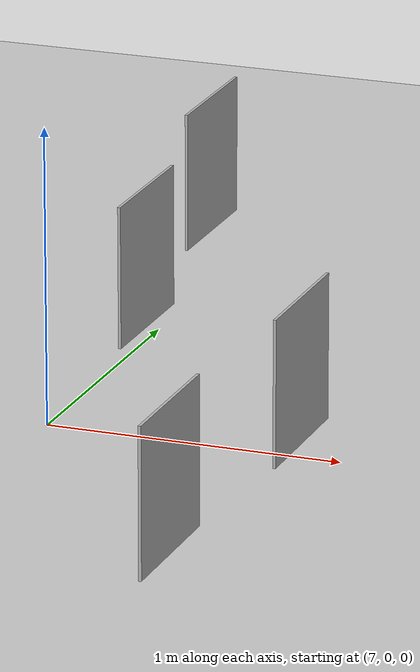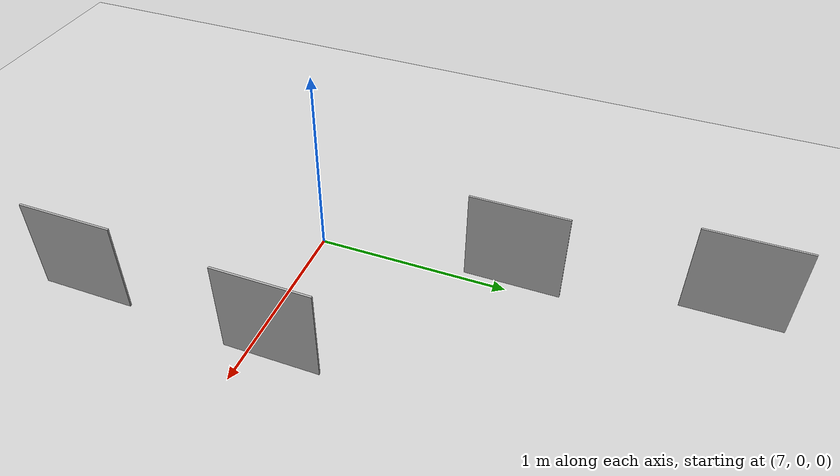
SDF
<sdf version="1.7">
 <world name="default">
  <model name="ground_plane">
   <static>1</static>
   <link name="link">
    <collision name="collision">
     <geometry><plane><normal>0 0 1</normal><size>100 100</size></plane></geometry>
     <surface>
      <contact><collide_bitmask>65535</collide_bitmask></contact>
      <friction><ode><mu>100</mu><mu2>50</mu2></ode></friction>
     </surface>
    </collision>
    <visual name="visual">
     <cast_shadows>0</cast_shadows>
     <geometry><plane><normal>0 0 1</normal><size>100 100</size></plane></geometry>
     <material>
      <script><uri>file://media/materials/scripts/gazebo.material</uri><name>Gazebo/Grey</name></script>
     </material>
    </visual>
   </link>
  </model>
  <model name="aruco">
   <link name="link">
    <pose>0 0 0.115 0 1.57 0</pose>
    <inertial>
     <mass>0.39</mass>
     <inertia><ixx>0.00058</ixx><ixy>0</ixy><ixz>0</ixz><iyy>0.00058</iyy><iyz>0</iyz><izz>0.00019</izz></inertia>
    </inertial>
    <collision name="collision"><geometry><box><size>0.496 0.496 0.01</size></box></geometry></collision>
    <visual name="visual">
     <geometry><box><size>0.496 0.496 0.01</size></box></geometry>
     <material>
      <script>
       <uri>model://apriltag/materials/scripts</uri>
       <uri>model://apriltag/materials/textures</uri>
       <name>startflag/Diffuse1</name>
      </script>
     </material>
    </visual>
   </link>
   <pose>6.78806 2.07089 0.133001 2.1e-05 0.001214 -7e-05</pose>
  </model>
  <model name="aruco_0">
   <link name="link">
    <pose>0 0 0.115 0 1.57 0</pose>
    <inertial>
     <mass>0.39</mass>
     <inertia><ixx>0.00058</ixx><ixy>0</ixy><ixz>0</ixz><iyy>0.00058</iyy><iyz>0</iyz><izz>0.00019</izz></inertia>
    </inertial>
    <collision name="collision"><geometry><box><size>0.496 0.496 0.01</size></box></geometry></collision>
    <visual name="visual">
     <geometry><box><size>0.496 0.496 0.01</size></box></geometry>
     <material>
      <script>
       <uri>model://apriltag/materials/scripts</uri>
       <uri>model://apriltag/materials/textures</uri>
       <name>startflag/Diffuse1</name>
      </script>
     </material>
    </visual>
   </link>
   <pose>6.94838 1.01795 0.13299 1.1e-05 0.000321 -7e-05</pose>
  </model>
  <model name="aruco_1">
   <link name="link">
    <pose>0 0 0.115 0 1.57 0</pose>
    <inertial>
     <mass>0.39</mass>
     <inertia><ixx>0.00058</ixx><ixy>0</ixy><ixz>0</ixz><iyy>0.00058</iyy><iyz>0</iyz><izz>0.00019</izz></inertia>
    </inertial>
    <collision name="collision"><geometry><box><size>0.496 0.496 0.01</size></box></geometry></collision>
    <visual name="visual">
     <geometry><box><size>0.496 0.496 0.01</size></box></geometry>
     <material>
      <script>
       <uri>model://apriltag/materials/scripts</uri>
       <uri>model://apriltag/materials/textures</uri>
       <name>startflag/Diffuse1</name>
      </script>
     </material>
    </visual>
   </link>
   <pose>7.82148 0.123451 0.132997 -1.8e-05 0.001255 -7e-05</pose>
  </model>
  <model name="aruco_2">
   <link name="link">
    <pose>0 0 0.115 0 1.57 0</pose>
    <inertial>
     <mass>0.39</mass>
     <inertia><ixx>0.00058</ixx><ixy>0</ixy><ixz>0</ixz><iyy>0.00058</iyy><iyz>0</iyz><izz>0.00019</izz></inertia>
    </inertial>
    <collision name="collision"><geometry><box><size>0.496 0.496 0.01</size></box></geometry></collision>
    <visual name="visual">
     <geometry><box><size>0.496 0.496 0.01</size></box></geometry>
     <material>
      <script>
       <uri>model://apriltag/materials/scripts</uri>
       <uri>model://apriltag/materials/textures</uri>
       <name>startflag/Diffuse1</name>
      </script>
     </material>
    </visual>
   </link>
   <pose>7.77361 -0.924564 0.133003 2.1e-05 0.001612 -7e-05</pose>
  </model>
 </world>
</sdf>
